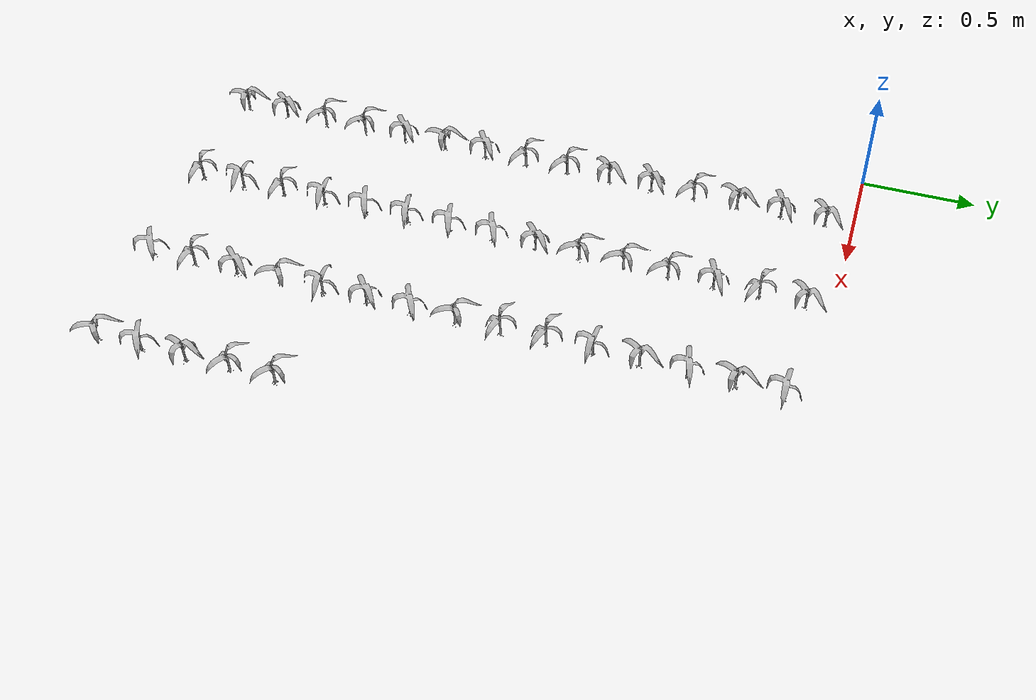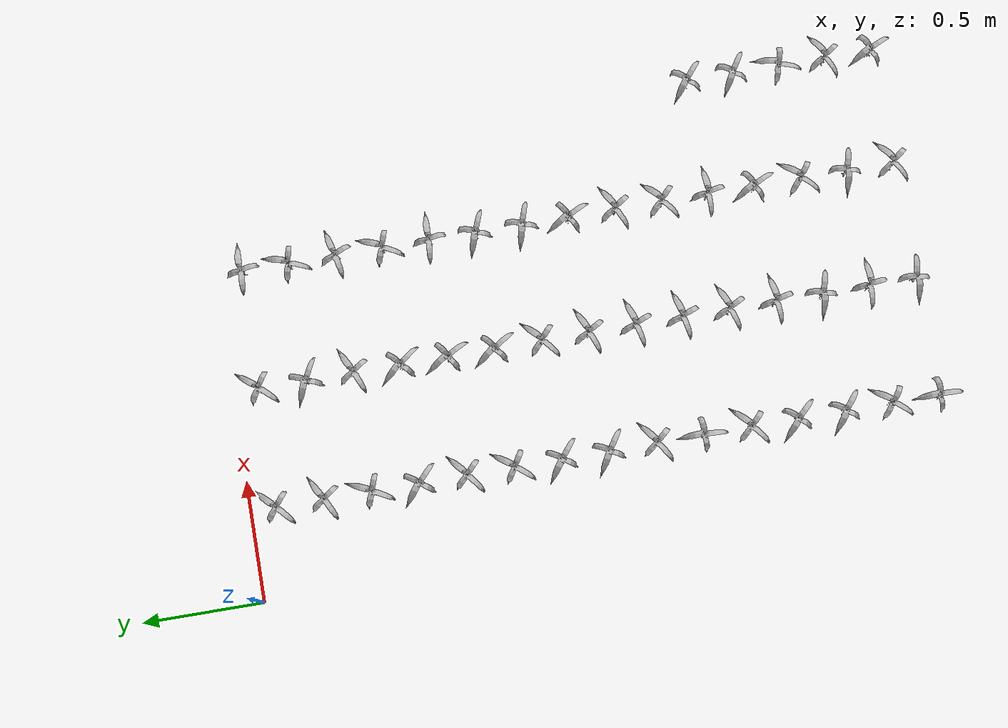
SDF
<sdf version="1.7">
 <world name="default">
  <model name="maize_0.36262630970692733_-2.8499999999999996">
   <static>1</static>
   <link name="link">
    <inertial>
     <mass>0.2</mass>
     <inertia>
      <ixx>0.166667</ixx>
      <ixy>0</ixy>
      <ixz>0</ixz>
      <iyy>0.166667</iyy>
      <iyz>0</iyz>
      <izz>0.166667</izz>
     </inertia>
    </inertial>
    <collision name="collision">
     <geometry><mesh><uri>model://corn_3/meshes/corn.dae</uri><scale>0.25 0.25 0.25</scale></mesh></geometry>
     <surface>
      <friction><ode><mu>0</mu><mu2>0</mu2></ode></friction>
      <contact><ode><kp>0</kp><kd>0</kd><max_vel>0</max_vel><min_depth>0.002</min_depth></ode></contact>
     </surface>
    </collision>
    <visual name="visual">
     <geometry><mesh><uri>model://corn_3/meshes/corn.dae</uri><scale>0.25 0.25 0.25</scale></mesh></geometry>
    </visual>
    <velocity_decay><linear>0</linear><angular>0</angular></velocity_decay>
   </link>
   <pose>0.362626 -2.85 0.05 0 -0 1.63997</pose>
  </model>
  <model name="maize_0.36262630970692733_-2.655">
   <static>1</static>
   <link name="link">
    <inertial>
     <mass>0.2</mass>
     <inertia>
      <ixx>0.166667</ixx>
      <ixy>0</ixy>
      <ixz>0</ixz>
      <iyy>0.166667</iyy>
      <iyz>0</iyz>
      <izz>0.166667</izz>
     </inertia>
    </inertial>
    <collision name="collision">
     <geometry><mesh><uri>model://corn_3/meshes/corn.dae</uri><scale>0.25 0.25 0.25</scale></mesh></geometry>
     <surface>
      <friction><ode><mu>0</mu><mu2>0</mu2></ode></friction>
      <contact><ode><kp>0</kp><kd>0</kd><max_vel>0</max_vel><min_depth>0.002</min_depth></ode></contact>
     </surface>
    </collision>
    <visual name="visual">
     <geometry><mesh><uri>model://corn_3/meshes/corn.dae</uri><scale>0.25 0.25 0.25</scale></mesh></geometry>
    </visual>
    <velocity_decay><linear>0</linear><angular>0</angular></velocity_decay>
   </link>
   <pose>0.362626 -2.655 0.05 0 -0 0.957036</pose>
  </model>
  <model name="maize_0.36262630970692733_-2.46">
   <static>1</static>
   <link name="link">
    <inertial>
     <mass>0.2</mass>
     <inertia>
      <ixx>0.166667</ixx>
      <ixy>0</ixy>
      <ixz>0</ixz>
      <iyy>0.166667</iyy>
      <iyz>0</iyz>
      <izz>0.166667</izz>
     </inertia>
    </inertial>
    <collision name="collision">
     <geometry><mesh><uri>model://corn_3/meshes/corn.dae</uri><scale>0.25 0.25 0.25</scale></mesh></geometry>
     <surface>
      <friction><ode><mu>0</mu><mu2>0</mu2></ode></friction>
      <contact><ode><kp>0</kp><kd>0</kd><max_vel>0</max_vel><min_depth>0.002</min_depth></ode></contact>
     </surface>
    </collision>
    <visual name="visual">
     <geometry><mesh><uri>model://corn_3/meshes/corn.dae</uri><scale>0.25 0.25 0.25</scale></mesh></geometry>
    </visual>
    <velocity_decay><linear>0</linear><angular>0</angular></velocity_decay>
   </link>
   <pose>0.362626 -2.46 0.05 0 -0 2.56929</pose>
  </model>
  <model name="maize_0.36262630970692733_-2.2649999999999997">
   <static>1</static>
   <link name="link">
    <inertial>
     <mass>0.2</mass>
     <inertia>
      <ixx>0.166667</ixx>
      <ixy>0</ixy>
      <ixz>0</ixz>
      <iyy>0.166667</iyy>
      <iyz>0</iyz>
      <izz>0.166667</izz>
     </inertia>
    </inertial>
    <collision name="collision">
     <geometry><mesh><uri>model://corn_3/meshes/corn.dae</uri><scale>0.25 0.25 0.25</scale></mesh></geometry>
     <surface>
      <friction><ode><mu>0</mu><mu2>0</mu2></ode></friction>
      <contact><ode><kp>0</kp><kd>0</kd><max_vel>0</max_vel><min_depth>0.002</min_depth></ode></contact>
     </surface>
    </collision>
    <visual name="visual">
     <geometry><mesh><uri>model://corn_3/meshes/corn.dae</uri><scale>0.25 0.25 0.25</scale></mesh></geometry>
    </visual>
    <velocity_decay><linear>0</linear><angular>0</angular></velocity_decay>
   </link>
   <pose>0.362626 -2.265 0.05 0 -0 2.45253</pose>
  </model>
  <model name="maize_0.36262630970692733_-2.07">
   <static>1</static>
   <link name="link">
    <inertial>
     <mass>0.2</mass>
     <inertia>
      <ixx>0.166667</ixx>
      <ixy>0</ixy>
      <ixz>0</ixz>
      <iyy>0.166667</iyy>
      <iyz>0</iyz>
      <izz>0.166667</izz>
     </inertia>
    </inertial>
    <collision name="collision">
     <geometry><mesh><uri>model://corn_3/meshes/corn.dae</uri><scale>0.25 0.25 0.25</scale></mesh></geometry>
     <surface>
      <friction><ode><mu>0</mu><mu2>0</mu2></ode></friction>
      <contact><ode><kp>0</kp><kd>0</kd><max_vel>0</max_vel><min_depth>0.002</min_depth></ode></contact>
     </surface>
    </collision>
    <visual name="visual">
     <geometry><mesh><uri>model://corn_3/meshes/corn.dae</uri><scale>0.25 0.25 0.25</scale></mesh></geometry>
    </visual>
    <velocity_decay><linear>0</linear><angular>0</angular></velocity_decay>
   </link>
   <pose>0.362626 -2.07 0.05 0 -0 0.765132</pose>
  </model>
  <model name="maize_0.36262630970692733_-1.8749999999999996">
   <static>1</static>
   <link name="link">
    <inertial>
     <mass>0.2</mass>
     <inertia>
      <ixx>0.166667</ixx>
      <ixy>0</ixy>
      <ixz>0</ixz>
      <iyy>0.166667</iyy>
      <iyz>0</iyz>
      <izz>0.166667</izz>
     </inertia>
    </inertial>
    <collision name="collision">
     <geometry><mesh><uri>model://corn_3/meshes/corn.dae</uri><scale>0.25 0.25 0.25</scale></mesh></geometry>
     <surface>
      <friction><ode><mu>0</mu><mu2>0</mu2></ode></friction>
      <contact><ode><kp>0</kp><kd>0</kd><max_vel>0</max_vel><min_depth>0.002</min_depth></ode></contact>
     </surface>
    </collision>
    <visual name="visual">
     <geometry><mesh><uri>model://corn_3/meshes/corn.dae</uri><scale>0.25 0.25 0.25</scale></mesh></geometry>
    </visual>
    <velocity_decay><linear>0</linear><angular>0</angular></velocity_decay>
   </link>
   <pose>0.362626 -1.875 0.05 0 -0 1.61392</pose>
  </model>
  <model name="maize_0.36262630970692733_-1.6799999999999997">
   <static>1</static>
   <link name="link">
    <inertial>
     <mass>0.2</mass>
     <inertia>
      <ixx>0.166667</ixx>
      <ixy>0</ixy>
      <ixz>0</ixz>
      <iyy>0.166667</iyy>
      <iyz>0</iyz>
      <izz>0.166667</izz>
     </inertia>
    </inertial>
    <collision name="collision">
     <geometry><mesh><uri>model://corn_3/meshes/corn.dae</uri><scale>0.25 0.25 0.25</scale></mesh></geometry>
     <surface>
      <friction><ode><mu>0</mu><mu2>0</mu2></ode></friction>
      <contact><ode><kp>0</kp><kd>0</kd><max_vel>0</max_vel><min_depth>0.002</min_depth></ode></contact>
     </surface>
    </collision>
    <visual name="visual">
     <geometry><mesh><uri>model://corn_3/meshes/corn.dae</uri><scale>0.25 0.25 0.25</scale></mesh></geometry>
    </visual>
    <velocity_decay><linear>0</linear><angular>0</angular></velocity_decay>
   </link>
   <pose>0.362626 -1.68 0.05 0 -0 0.6613</pose>
  </model>
  <model name="maize_0.36262630970692733_-1.4849999999999999">
   <static>1</static>
   <link name="link">
    <inertial>
     <mass>0.2</mass>
     <inertia>
      <ixx>0.166667</ixx>
      <ixy>0</ixy>
      <ixz>0</ixz>
      <iyy>0.166667</iyy>
      <iyz>0</iyz>
      <izz>0.166667</izz>
     </inertia>
    </inertial>
    <collision name="collision">
     <geometry><mesh><uri>model://corn_3/meshes/corn.dae</uri><scale>0.25 0.25 0.25</scale></mesh></geometry>
     <surface>
      <friction><ode><mu>0</mu><mu2>0</mu2></ode></friction>
      <contact><ode><kp>0</kp><kd>0</kd><max_vel>0</max_vel><min_depth>0.002</min_depth></ode></contact>
     </surface>
    </collision>
    <visual name="visual">
     <geometry><mesh><uri>model://corn_3/meshes/corn.dae</uri><scale>0.25 0.25 0.25</scale></mesh></geometry>
    </visual>
    <velocity_decay><linear>0</linear><angular>0</angular></velocity_decay>
   </link>
   <pose>0.362626 -1.485 0.05 0 -0 2.6544</pose>
  </model>
  <model name="maize_0.36262630970692733_-1.2899999999999996">
   <static>1</static>
   <link name="link">
    <inertial>
     <mass>0.2</mass>
     <inertia>
      <ixx>0.166667</ixx>
      <ixy>0</ixy>
      <ixz>0</ixz>
      <iyy>0.166667</iyy>
      <iyz>0</iyz>
      <izz>0.166667</izz>
     </inertia>
    </inertial>
    <collision name="collision">
     <geometry><mesh><uri>model://corn_3/meshes/corn.dae</uri><scale>0.25 0.25 0.25</scale></mesh></geometry>
     <surface>
      <friction><ode><mu>0</mu><mu2>0</mu2></ode></friction>
      <contact><ode><kp>0</kp><kd>0</kd><max_vel>0</max_vel><min_depth>0.002</min_depth></ode></contact>
     </surface>
    </collision>
    <visual name="visual">
     <geometry><mesh><uri>model://corn_3/meshes/corn.dae</uri><scale>0.25 0.25 0.25</scale></mesh></geometry>
    </visual>
    <velocity_decay><linear>0</linear><angular>0</angular></velocity_decay>
   </link>
   <pose>0.362626 -1.29 0.05 0 -0 2.56945</pose>
  </model>
  <model name="maize_0.36262630970692733_-1.0949999999999998">
   <static>1</static>
   <link name="link">
    <inertial>
     <mass>0.2</mass>
     <inertia>
      <ixx>0.166667</ixx>
      <ixy>0</ixy>
      <ixz>0</ixz>
      <iyy>0.166667</iyy>
      <iyz>0</iyz>
      <izz>0.166667</izz>
     </inertia>
    </inertial>
    <collision name="collision">
     <geometry><mesh><uri>model://corn_3/meshes/corn.dae</uri><scale>0.25 0.25 0.25</scale></mesh></geometry>
     <surface>
      <friction><ode><mu>0</mu><mu2>0</mu2></ode></friction>
      <contact><ode><kp>0</kp><kd>0</kd><max_vel>0</max_vel><min_depth>0.002</min_depth></ode></contact>
     </surface>
    </collision>
    <visual name="visual">
     <geometry><mesh><uri>model://corn_3/meshes/corn.dae</uri><scale>0.25 0.25 0.25</scale></mesh></geometry>
    </visual>
    <velocity_decay><linear>0</linear><angular>0</angular></velocity_decay>
   </link>
   <pose>0.362626 -1.095 0.05 0 -0 0.975413</pose>
  </model>
  <model name="maize_0.36262630970692733_-0.8999999999999995">
   <static>1</static>
   <link name="link">
    <inertial>
     <mass>0.2</mass>
     <inertia>
      <ixx>0.166667</ixx>
      <ixy>0</ixy>
      <ixz>0</ixz>
      <iyy>0.166667</iyy>
      <iyz>0</iyz>
      <izz>0.166667</izz>
     </inertia>
    </inertial>
    <collision name="collision">
     <geometry><mesh><uri>model://corn_3/meshes/corn.dae</uri><scale>0.25 0.25 0.25</scale></mesh></geometry>
     <surface>
      <friction><ode><mu>0</mu><mu2>0</mu2></ode></friction>
      <contact><ode><kp>0</kp><kd>0</kd><max_vel>0</max_vel><min_depth>0.002</min_depth></ode></contact>
     </surface>
    </collision>
    <visual name="visual">
     <geometry><mesh><uri>model://corn_3/meshes/corn.dae</uri><scale>0.25 0.25 0.25</scale></mesh></geometry>
    </visual>
    <velocity_decay><linear>0</linear><angular>0</angular></velocity_decay>
   </link>
   <pose>0.362626 -0.9 0.05 0 -0 0.733464</pose>
  </model>
  <model name="maize_0.36262630970692733_-0.7050000000000001">
   <static>1</static>
   <link name="link">
    <inertial>
     <mass>0.2</mass>
     <inertia>
      <ixx>0.166667</ixx>
      <ixy>0</ixy>
      <ixz>0</ixz>
      <iyy>0.166667</iyy>
      <iyz>0</iyz>
      <izz>0.166667</izz>
     </inertia>
    </inertial>
    <collision name="collision">
     <geometry><mesh><uri>model://corn_3/meshes/corn.dae</uri><scale>0.25 0.25 0.25</scale></mesh></geometry>
     <surface>
      <friction><ode><mu>0</mu><mu2>0</mu2></ode></friction>
      <contact><ode><kp>0</kp><kd>0</kd><max_vel>0</max_vel><min_depth>0.002</min_depth></ode></contact>
     </surface>
    </collision>
    <visual name="visual">
     <geometry><mesh><uri>model://corn_3/meshes/corn.dae</uri><scale>0.25 0.25 0.25</scale></mesh></geometry>
    </visual>
    <velocity_decay><linear>0</linear><angular>0</angular></velocity_decay>
   </link>
   <pose>0.362626 -0.705 0.05 0 -0 2.50395</pose>
  </model>
  <model name="maize_0.36262630970692733_-0.5099999999999998">
   <static>1</static>
   <link name="link">
    <inertial>
     <mass>0.2</mass>
     <inertia>
      <ixx>0.166667</ixx>
      <ixy>0</ixy>
      <ixz>0</ixz>
      <iyy>0.166667</iyy>
      <iyz>0</iyz>
      <izz>0.166667</izz>
     </inertia>
    </inertial>
    <collision name="collision">
     <geometry><mesh><uri>model://corn_3/meshes/corn.dae</uri><scale>0.25 0.25 0.25</scale></mesh></geometry>
     <surface>
      <friction><ode><mu>0</mu><mu2>0</mu2></ode></friction>
      <contact><ode><kp>0</kp><kd>0</kd><max_vel>0</max_vel><min_depth>0.002</min_depth></ode></contact>
     </surface>
    </collision>
    <visual name="visual">
     <geometry><mesh><uri>model://corn_3/meshes/corn.dae</uri><scale>0.25 0.25 0.25</scale></mesh></geometry>
    </visual>
    <velocity_decay><linear>0</linear><angular>0</angular></velocity_decay>
   </link>
   <pose>0.362626 -0.51 0.05 0 -0 1.16111</pose>
  </model>
  <model name="maize_0.36262630970692733_-0.3149999999999995">
   <static>1</static>
   <link name="link">
    <inertial>
     <mass>0.2</mass>
     <inertia>
      <ixx>0.166667</ixx>
      <ixy>0</ixy>
      <ixz>0</ixz>
      <iyy>0.166667</iyy>
      <iyz>0</iyz>
      <izz>0.166667</izz>
     </inertia>
    </inertial>
    <collision name="collision">
     <geometry><mesh><uri>model://corn_3/meshes/corn.dae</uri><scale>0.25 0.25 0.25</scale></mesh></geometry>
     <surface>
      <friction><ode><mu>0</mu><mu2>0</mu2></ode></friction>
      <contact><ode><kp>0</kp><kd>0</kd><max_vel>0</max_vel><min_depth>0.002</min_depth></ode></contact>
     </surface>
    </collision>
    <visual name="visual">
     <geometry><mesh><uri>model://corn_3/meshes/corn.dae</uri><scale>0.25 0.25 0.25</scale></mesh></geometry>
    </visual>
    <velocity_decay><linear>0</linear><angular>0</angular></velocity_decay>
   </link>
   <pose>0.362626 -0.315 0.05 0 -0 0.552282</pose>
  </model>
  <model name="maize_0.36262630970692733_-0.1200000000000001">
   <static>1</static>
   <link name="link">
    <inertial>
     <mass>0.2</mass>
     <inertia>
      <ixx>0.166667</ixx>
      <ixy>0</ixy>
      <ixz>0</ixz>
      <iyy>0.166667</iyy>
      <iyz>0</iyz>
      <izz>0.166667</izz>
     </inertia>
    </inertial>
    <collision name="collision">
     <geometry><mesh><uri>model://corn_3/meshes/corn.dae</uri><scale>0.25 0.25 0.25</scale></mesh></geometry>
     <surface>
      <friction><ode><mu>0</mu><mu2>0</mu2></ode></friction>
      <contact><ode><kp>0</kp><kd>0</kd><max_vel>0</max_vel><min_depth>0.002</min_depth></ode></contact>
     </surface>
    </collision>
    <visual name="visual">
     <geometry><mesh><uri>model://corn_3/meshes/corn.dae</uri><scale>0.25 0.25 0.25</scale></mesh></geometry>
    </visual>
    <velocity_decay><linear>0</linear><angular>0</angular></velocity_decay>
   </link>
   <pose>0.362626 -0.12 0.05 0 -0 0.819736</pose>
  </model>
  <model name="maize_0.8547947739721122_-2.8499999999999996">
   <static>1</static>
   <link name="link">
    <inertial>
     <mass>0.2</mass>
     <inertia>
      <ixx>0.166667</ixx>
      <ixy>0</ixy>
      <ixz>0</ixz>
      <iyy>0.166667</iyy>
      <iyz>0</iyz>
      <izz>0.166667</izz>
     </inertia>
    </inertial>
    <collision name="collision">
     <geometry><mesh><uri>model://corn_3/meshes/corn.dae</uri><scale>0.25 0.25 0.25</scale></mesh></geometry>
     <surface>
      <friction><ode><mu>0</mu><mu2>0</mu2></ode></friction>
      <contact><ode><kp>0</kp><kd>0</kd><max_vel>0</max_vel><min_depth>0.002</min_depth></ode></contact>
     </surface>
    </collision>
    <visual name="visual">
     <geometry><mesh><uri>model://corn_3/meshes/corn.dae</uri><scale>0.25 0.25 0.25</scale></mesh></geometry>
    </visual>
    <velocity_decay><linear>0</linear><angular>0</angular></velocity_decay>
   </link>
   <pose>0.854795 -2.85 0.05 0 -0 3.07498</pose>
  </model>
  <model name="maize_0.8547947739721122_-2.655">
   <static>1</static>
   <link name="link">
    <inertial>
     <mass>0.2</mass>
     <inertia>
      <ixx>0.166667</ixx>
      <ixy>0</ixy>
      <ixz>0</ixz>
      <iyy>0.166667</iyy>
      <iyz>0</iyz>
      <izz>0.166667</izz>
     </inertia>
    </inertial>
    <collision name="collision">
     <geometry><mesh><uri>model://corn_3/meshes/corn.dae</uri><scale>0.25 0.25 0.25</scale></mesh></geometry>
     <surface>
      <friction><ode><mu>0</mu><mu2>0</mu2></ode></friction>
      <contact><ode><kp>0</kp><kd>0</kd><max_vel>0</max_vel><min_depth>0.002</min_depth></ode></contact>
     </surface>
    </collision>
    <visual name="visual">
     <geometry><mesh><uri>model://corn_3/meshes/corn.dae</uri><scale>0.25 0.25 0.25</scale></mesh></geometry>
    </visual>
    <velocity_decay><linear>0</linear><angular>0</angular></velocity_decay>
   </link>
   <pose>0.854795 -2.655 0.05 0 -0 0.038304</pose>
  </model>
  <model name="maize_0.8547947739721122_-2.46">
   <static>1</static>
   <link name="link">
    <inertial>
     <mass>0.2</mass>
     <inertia>
      <ixx>0.166667</ixx>
      <ixy>0</ixy>
      <ixz>0</ixz>
      <iyy>0.166667</iyy>
      <iyz>0</iyz>
      <izz>0.166667</izz>
     </inertia>
    </inertial>
    <collision name="collision">
     <geometry><mesh><uri>model://corn_3/meshes/corn.dae</uri><scale>0.25 0.25 0.25</scale></mesh></geometry>
     <surface>
      <friction><ode><mu>0</mu><mu2>0</mu2></ode></friction>
      <contact><ode><kp>0</kp><kd>0</kd><max_vel>0</max_vel><min_depth>0.002</min_depth></ode></contact>
     </surface>
    </collision>
    <visual name="visual">
     <geometry><mesh><uri>model://corn_3/meshes/corn.dae</uri><scale>0.25 0.25 0.25</scale></mesh></geometry>
    </visual>
    <velocity_decay><linear>0</linear><angular>0</angular></velocity_decay>
   </link>
   <pose>0.854795 -2.46 0.05 0 -0 2.97544</pose>
  </model>
  <model name="maize_0.8547947739721122_-2.2649999999999997">
   <static>1</static>
   <link name="link">
    <inertial>
     <mass>0.2</mass>
     <inertia>
      <ixx>0.166667</ixx>
      <ixy>0</ixy>
      <ixz>0</ixz>
      <iyy>0.166667</iyy>
      <iyz>0</iyz>
      <izz>0.166667</izz>
     </inertia>
    </inertial>
    <collision name="collision">
     <geometry><mesh><uri>model://corn_3/meshes/corn.dae</uri><scale>0.25 0.25 0.25</scale></mesh></geometry>
     <surface>
      <friction><ode><mu>0</mu><mu2>0</mu2></ode></friction>
      <contact><ode><kp>0</kp><kd>0</kd><max_vel>0</max_vel><min_depth>0.002</min_depth></ode></contact>
     </surface>
    </collision>
    <visual name="visual">
     <geometry><mesh><uri>model://corn_3/meshes/corn.dae</uri><scale>0.25 0.25 0.25</scale></mesh></geometry>
    </visual>
    <velocity_decay><linear>0</linear><angular>0</angular></velocity_decay>
   </link>
   <pose>0.854795 -2.265 0.05 0 -0 0.165056</pose>
  </model>
  <model name="maize_0.8547947739721122_-2.07">
   <static>1</static>
   <link name="link">
    <inertial>
     <mass>0.2</mass>
     <inertia>
      <ixx>0.166667</ixx>
      <ixy>0</ixy>
      <ixz>0</ixz>
      <iyy>0.166667</iyy>
      <iyz>0</iyz>
      <izz>0.166667</izz>
     </inertia>
    </inertial>
    <collision name="collision">
     <geometry><mesh><uri>model://corn_3/meshes/corn.dae</uri><scale>0.25 0.25 0.25</scale></mesh></geometry>
     <surface>
      <friction><ode><mu>0</mu><mu2>0</mu2></ode></friction>
      <contact><ode><kp>0</kp><kd>0</kd><max_vel>0</max_vel><min_depth>0.002</min_depth></ode></contact>
     </surface>
    </collision>
    <visual name="visual">
     <geometry><mesh><uri>model://corn_3/meshes/corn.dae</uri><scale>0.25 0.25 0.25</scale></mesh></geometry>
    </visual>
    <velocity_decay><linear>0</linear><angular>0</angular></velocity_decay>
   </link>
   <pose>0.854795 -2.07 0.05 0 -0 0.405092</pose>
  </model>
  <model name="maize_0.8547947739721122_-1.8749999999999996">
   <static>1</static>
   <link name="link">
    <inertial>
     <mass>0.2</mass>
     <inertia>
      <ixx>0.166667</ixx>
      <ixy>0</ixy>
      <ixz>0</ixz>
      <iyy>0.166667</iyy>
      <iyz>0</iyz>
      <izz>0.166667</izz>
     </inertia>
    </inertial>
    <collision name="collision">
     <geometry><mesh><uri>model://corn_3/meshes/corn.dae</uri><scale>0.25 0.25 0.25</scale></mesh></geometry>
     <surface>
      <friction><ode><mu>0</mu><mu2>0</mu2></ode></friction>
      <contact><ode><kp>0</kp><kd>0</kd><max_vel>0</max_vel><min_depth>0.002</min_depth></ode></contact>
     </surface>
    </collision>
    <visual name="visual">
     <geometry><mesh><uri>model://corn_3/meshes/corn.dae</uri><scale>0.25 0.25 0.25</scale></mesh></geometry>
    </visual>
    <velocity_decay><linear>0</linear><angular>0</angular></velocity_decay>
   </link>
   <pose>0.854795 -1.875 0.05 0 -0 0.283132</pose>
  </model>
  <model name="maize_0.8547947739721122_-1.6799999999999997">
   <static>1</static>
   <link name="link">
    <inertial>
     <mass>0.2</mass>
     <inertia>
      <ixx>0.166667</ixx>
      <ixy>0</ixy>
      <ixz>0</ixz>
      <iyy>0.166667</iyy>
      <iyz>0</iyz>
      <izz>0.166667</izz>
     </inertia>
    </inertial>
    <collision name="collision">
     <geometry><mesh><uri>model://corn_3/meshes/corn.dae</uri><scale>0.25 0.25 0.25</scale></mesh></geometry>
     <surface>
      <friction><ode><mu>0</mu><mu2>0</mu2></ode></friction>
      <contact><ode><kp>0</kp><kd>0</kd><max_vel>0</max_vel><min_depth>0.002</min_depth></ode></contact>
     </surface>
    </collision>
    <visual name="visual">
     <geometry><mesh><uri>model://corn_3/meshes/corn.dae</uri><scale>0.25 0.25 0.25</scale></mesh></geometry>
    </visual>
    <velocity_decay><linear>0</linear><angular>0</angular></velocity_decay>
   </link>
   <pose>0.854795 -1.68 0.05 0 -0 0.321139</pose>
  </model>
  <model name="maize_0.8547947739721122_-1.4849999999999999">
   <static>1</static>
   <link name="link">
    <inertial>
     <mass>0.2</mass>
     <inertia>
      <ixx>0.166667</ixx>
      <ixy>0</ixy>
      <ixz>0</ixz>
      <iyy>0.166667</iyy>
      <iyz>0</iyz>
      <izz>0.166667</izz>
     </inertia>
    </inertial>
    <collision name="collision">
     <geometry><mesh><uri>model://corn_3/meshes/corn.dae</uri><scale>0.25 0.25 0.25</scale></mesh></geometry>
     <surface>
      <friction><ode><mu>0</mu><mu2>0</mu2></ode></friction>
      <contact><ode><kp>0</kp><kd>0</kd><max_vel>0</max_vel><min_depth>0.002</min_depth></ode></contact>
     </surface>
    </collision>
    <visual name="visual">
     <geometry><mesh><uri>model://corn_3/meshes/corn.dae</uri><scale>0.25 0.25 0.25</scale></mesh></geometry>
    </visual>
    <velocity_decay><linear>0</linear><angular>0</angular></velocity_decay>
   </link>
   <pose>0.854795 -1.485 0.05 0 -0 0.455504</pose>
  </model>
  <model name="maize_0.8547947739721122_-1.2899999999999996">
   <static>1</static>
   <link name="link">
    <inertial>
     <mass>0.2</mass>
     <inertia>
      <ixx>0.166667</ixx>
      <ixy>0</ixy>
      <ixz>0</ixz>
      <iyy>0.166667</iyy>
      <iyz>0</iyz>
      <izz>0.166667</izz>
     </inertia>
    </inertial>
    <collision name="collision">
     <geometry><mesh><uri>model://corn_3/meshes/corn.dae</uri><scale>0.25 0.25 0.25</scale></mesh></geometry>
     <surface>
      <friction><ode><mu>0</mu><mu2>0</mu2></ode></friction>
      <contact><ode><kp>0</kp><kd>0</kd><max_vel>0</max_vel><min_depth>0.002</min_depth></ode></contact>
     </surface>
    </collision>
    <visual name="visual">
     <geometry><mesh><uri>model://corn_3/meshes/corn.dae</uri><scale>0.25 0.25 0.25</scale></mesh></geometry>
    </visual>
    <velocity_decay><linear>0</linear><angular>0</angular></velocity_decay>
   </link>
   <pose>0.854795 -1.29 0.05 0 -0 0.790538</pose>
  </model>
  <model name="maize_0.8547947739721122_-1.0949999999999998">
   <static>1</static>
   <link name="link">
    <inertial>
     <mass>0.2</mass>
     <inertia>
      <ixx>0.166667</ixx>
      <ixy>0</ixy>
      <ixz>0</ixz>
      <iyy>0.166667</iyy>
      <iyz>0</iyz>
      <izz>0.166667</izz>
     </inertia>
    </inertial>
    <collision name="collision">
     <geometry><mesh><uri>model://corn_3/meshes/corn.dae</uri><scale>0.25 0.25 0.25</scale></mesh></geometry>
     <surface>
      <friction><ode><mu>0</mu><mu2>0</mu2></ode></friction>
      <contact><ode><kp>0</kp><kd>0</kd><max_vel>0</max_vel><min_depth>0.002</min_depth></ode></contact>
     </surface>
    </collision>
    <visual name="visual">
     <geometry><mesh><uri>model://corn_3/meshes/corn.dae</uri><scale>0.25 0.25 0.25</scale></mesh></geometry>
    </visual>
    <velocity_decay><linear>0</linear><angular>0</angular></velocity_decay>
   </link>
   <pose>0.854795 -1.095 0.05 0 -0 2.23783</pose>
  </model>
  <model name="maize_0.8547947739721122_-0.8999999999999995">
   <static>1</static>
   <link name="link">
    <inertial>
     <mass>0.2</mass>
     <inertia>
      <ixx>0.166667</ixx>
      <ixy>0</ixy>
      <ixz>0</ixz>
      <iyy>0.166667</iyy>
      <iyz>0</iyz>
      <izz>0.166667</izz>
     </inertia>
    </inertial>
    <collision name="collision">
     <geometry><mesh><uri>model://corn_3/meshes/corn.dae</uri><scale>0.25 0.25 0.25</scale></mesh></geometry>
     <surface>
      <friction><ode><mu>0</mu><mu2>0</mu2></ode></friction>
      <contact><ode><kp>0</kp><kd>0</kd><max_vel>0</max_vel><min_depth>0.002</min_depth></ode></contact>
     </surface>
    </collision>
    <visual name="visual">
     <geometry><mesh><uri>model://corn_3/meshes/corn.dae</uri><scale>0.25 0.25 0.25</scale></mesh></geometry>
    </visual>
    <velocity_decay><linear>0</linear><angular>0</angular></velocity_decay>
   </link>
   <pose>0.854795 -0.9 0.05 0 -0 2.15259</pose>
  </model>
  <model name="maize_0.8547947739721122_-0.7050000000000001">
   <static>1</static>
   <link name="link">
    <inertial>
     <mass>0.2</mass>
     <inertia>
      <ixx>0.166667</ixx>
      <ixy>0</ixy>
      <ixz>0</ixz>
      <iyy>0.166667</iyy>
      <iyz>0</iyz>
      <izz>0.166667</izz>
     </inertia>
    </inertial>
    <collision name="collision">
     <geometry><mesh><uri>model://corn_3/meshes/corn.dae</uri><scale>0.25 0.25 0.25</scale></mesh></geometry>
     <surface>
      <friction><ode><mu>0</mu><mu2>0</mu2></ode></friction>
      <contact><ode><kp>0</kp><kd>0</kd><max_vel>0</max_vel><min_depth>0.002</min_depth></ode></contact>
     </surface>
    </collision>
    <visual name="visual">
     <geometry><mesh><uri>model://corn_3/meshes/corn.dae</uri><scale>0.25 0.25 0.25</scale></mesh></geometry>
    </visual>
    <velocity_decay><linear>0</linear><angular>0</angular></velocity_decay>
   </link>
   <pose>0.854795 -0.705 0.05 0 -0 2.32455</pose>
  </model>
  <model name="maize_0.8547947739721122_-0.5099999999999998">
   <static>1</static>
   <link name="link">
    <inertial>
     <mass>0.2</mass>
     <inertia>
      <ixx>0.166667</ixx>
      <ixy>0</ixy>
      <ixz>0</ixz>
      <iyy>0.166667</iyy>
      <iyz>0</iyz>
      <izz>0.166667</izz>
     </inertia>
    </inertial>
    <collision name="collision">
     <geometry><mesh><uri>model://corn_3/meshes/corn.dae</uri><scale>0.25 0.25 0.25</scale></mesh></geometry>
     <surface>
      <friction><ode><mu>0</mu><mu2>0</mu2></ode></friction>
      <contact><ode><kp>0</kp><kd>0</kd><max_vel>0</max_vel><min_depth>0.002</min_depth></ode></contact>
     </surface>
    </collision>
    <visual name="visual">
     <geometry><mesh><uri>model://corn_3/meshes/corn.dae</uri><scale>0.25 0.25 0.25</scale></mesh></geometry>
    </visual>
    <velocity_decay><linear>0</linear><angular>0</angular></velocity_decay>
   </link>
   <pose>0.854795 -0.51 0.05 0 -0 0.500217</pose>
  </model>
  <model name="maize_0.8547947739721122_-0.3149999999999995">
   <static>1</static>
   <link name="link">
    <inertial>
     <mass>0.2</mass>
     <inertia>
      <ixx>0.166667</ixx>
      <ixy>0</ixy>
      <ixz>0</ixz>
      <iyy>0.166667</iyy>
      <iyz>0</iyz>
      <izz>0.166667</izz>
     </inertia>
    </inertial>
    <collision name="collision">
     <geometry><mesh><uri>model://corn_3/meshes/corn.dae</uri><scale>0.25 0.25 0.25</scale></mesh></geometry>
     <surface>
      <friction><ode><mu>0</mu><mu2>0</mu2></ode></friction>
      <contact><ode><kp>0</kp><kd>0</kd><max_vel>0</max_vel><min_depth>0.002</min_depth></ode></contact>
     </surface>
    </collision>
    <visual name="visual">
     <geometry><mesh><uri>model://corn_3/meshes/corn.dae</uri><scale>0.25 0.25 0.25</scale></mesh></geometry>
    </visual>
    <velocity_decay><linear>0</linear><angular>0</angular></velocity_decay>
   </link>
   <pose>0.854795 -0.315 0.05 0 -0 2.78046</pose>
  </model>
  <model name="maize_0.8547947739721122_-0.1200000000000001">
   <static>1</static>
   <link name="link">
    <inertial>
     <mass>0.2</mass>
     <inertia>
      <ixx>0.166667</ixx>
      <ixy>0</ixy>
      <ixz>0</ixz>
      <iyy>0.166667</iyy>
      <iyz>0</iyz>
      <izz>0.166667</izz>
     </inertia>
    </inertial>
    <collision name="collision">
     <geometry><mesh><uri>model://corn_3/meshes/corn.dae</uri><scale>0.25 0.25 0.25</scale></mesh></geometry>
     <surface>
      <friction><ode><mu>0</mu><mu2>0</mu2></ode></friction>
      <contact><ode><kp>0</kp><kd>0</kd><max_vel>0</max_vel><min_depth>0.002</min_depth></ode></contact>
     </surface>
    </collision>
    <visual name="visual">
     <geometry><mesh><uri>model://corn_3/meshes/corn.dae</uri><scale>0.25 0.25 0.25</scale></mesh></geometry>
    </visual>
    <velocity_decay><linear>0</linear><angular>0</angular></velocity_decay>
   </link>
   <pose>0.854795 -0.12 0.05 0 -0 0.921341</pose>
  </model>
  <model name="maize_1.346222194063599_-2.8499999999999996">
   <static>1</static>
   <link name="link">
    <inertial>
     <mass>0.2</mass>
     <inertia>
      <ixx>0.166667</ixx>
      <ixy>0</ixy>
      <ixz>0</ixz>
      <iyy>0.166667</iyy>
      <iyz>0</iyz>
      <izz>0.166667</izz>
     </inertia>
    </inertial>
    <collision name="collision">
     <geometry><mesh><uri>model://corn_3/meshes/corn.dae</uri><scale>0.25 0.25 0.25</scale></mesh></geometry>
     <surface>
      <friction><ode><mu>0</mu><mu2>0</mu2></ode></friction>
      <contact><ode><kp>0</kp><kd>0</kd><max_vel>0</max_vel><min_depth>0.002</min_depth></ode></contact>
     </surface>
    </collision>
    <visual name="visual">
     <geometry><mesh><uri>model://corn_3/meshes/corn.dae</uri><scale>0.25 0.25 0.25</scale></mesh></geometry>
    </visual>
    <velocity_decay><linear>0</linear><angular>0</angular></velocity_decay>
   </link>
   <pose>1.34622 -2.85 0.05 0 -0 0.611512</pose>
  </model>
  <model name="maize_1.346222194063599_-2.655">
   <static>1</static>
   <link name="link">
    <inertial>
     <mass>0.2</mass>
     <inertia>
      <ixx>0.166667</ixx>
      <ixy>0</ixy>
      <ixz>0</ixz>
      <iyy>0.166667</iyy>
      <iyz>0</iyz>
      <izz>0.166667</izz>
     </inertia>
    </inertial>
    <collision name="collision">
     <geometry><mesh><uri>model://corn_3/meshes/corn.dae</uri><scale>0.25 0.25 0.25</scale></mesh></geometry>
     <surface>
      <friction><ode><mu>0</mu><mu2>0</mu2></ode></friction>
      <contact><ode><kp>0</kp><kd>0</kd><max_vel>0</max_vel><min_depth>0.002</min_depth></ode></contact>
     </surface>
    </collision>
    <visual name="visual">
     <geometry><mesh><uri>model://corn_3/meshes/corn.dae</uri><scale>0.25 0.25 0.25</scale></mesh></geometry>
    </visual>
    <velocity_decay><linear>0</linear><angular>0</angular></velocity_decay>
   </link>
   <pose>1.34622 -2.655 0.05 0 -0 2.99276</pose>
  </model>
  <model name="maize_1.346222194063599_-2.46">
   <static>1</static>
   <link name="link">
    <inertial>
     <mass>0.2</mass>
     <inertia>
      <ixx>0.166667</ixx>
      <ixy>0</ixy>
      <ixz>0</ixz>
      <iyy>0.166667</iyy>
      <iyz>0</iyz>
      <izz>0.166667</izz>
     </inertia>
    </inertial>
    <collision name="collision">
     <geometry><mesh><uri>model://corn_3/meshes/corn.dae</uri><scale>0.25 0.25 0.25</scale></mesh></geometry>
     <surface>
      <friction><ode><mu>0</mu><mu2>0</mu2></ode></friction>
      <contact><ode><kp>0</kp><kd>0</kd><max_vel>0</max_vel><min_depth>0.002</min_depth></ode></contact>
     </surface>
    </collision>
    <visual name="visual">
     <geometry><mesh><uri>model://corn_3/meshes/corn.dae</uri><scale>0.25 0.25 0.25</scale></mesh></geometry>
    </visual>
    <velocity_decay><linear>0</linear><angular>0</angular></velocity_decay>
   </link>
   <pose>1.34622 -2.46 0.05 0 -0 0.88836</pose>
  </model>
  <model name="maize_1.346222194063599_-2.2649999999999997">
   <static>1</static>
   <link name="link">
    <inertial>
     <mass>0.2</mass>
     <inertia>
      <ixx>0.166667</ixx>
      <ixy>0</ixy>
      <ixz>0</ixz>
      <iyy>0.166667</iyy>
      <iyz>0</iyz>
      <izz>0.166667</izz>
     </inertia>
    </inertial>
    <collision name="collision">
     <geometry><mesh><uri>model://corn_3/meshes/corn.dae</uri><scale>0.25 0.25 0.25</scale></mesh></geometry>
     <surface>
      <friction><ode><mu>0</mu><mu2>0</mu2></ode></friction>
      <contact><ode><kp>0</kp><kd>0</kd><max_vel>0</max_vel><min_depth>0.002</min_depth></ode></contact>
     </surface>
    </collision>
    <visual name="visual">
     <geometry><mesh><uri>model://corn_3/meshes/corn.dae</uri><scale>0.25 0.25 0.25</scale></mesh></geometry>
    </visual>
    <velocity_decay><linear>0</linear><angular>0</angular></velocity_decay>
   </link>
   <pose>1.34622 -2.265 0.05 0 -0 2.11704</pose>
  </model>
  <model name="maize_1.346222194063599_-2.07">
   <static>1</static>
   <link name="link">
    <inertial>
     <mass>0.2</mass>
     <inertia>
      <ixx>0.166667</ixx>
      <ixy>0</ixy>
      <ixz>0</ixz>
      <iyy>0.166667</iyy>
      <iyz>0</iyz>
      <izz>0.166667</izz>
     </inertia>
    </inertial>
    <collision name="collision">
     <geometry><mesh><uri>model://corn_3/meshes/corn.dae</uri><scale>0.25 0.25 0.25</scale></mesh></geometry>
     <surface>
      <friction><ode><mu>0</mu><mu2>0</mu2></ode></friction>
      <contact><ode><kp>0</kp><kd>0</kd><max_vel>0</max_vel><min_depth>0.002</min_depth></ode></contact>
     </surface>
    </collision>
    <visual name="visual">
     <geometry><mesh><uri>model://corn_3/meshes/corn.dae</uri><scale>0.25 0.25 0.25</scale></mesh></geometry>
    </visual>
    <velocity_decay><linear>0</linear><angular>0</angular></velocity_decay>
   </link>
   <pose>1.34622 -2.07 0.05 0 -0 0.095744</pose>
  </model>
  <model name="maize_1.346222194063599_-1.8749999999999996">
   <static>1</static>
   <link name="link">
    <inertial>
     <mass>0.2</mass>
     <inertia>
      <ixx>0.166667</ixx>
      <ixy>0</ixy>
      <ixz>0</ixz>
      <iyy>0.166667</iyy>
      <iyz>0</iyz>
      <izz>0.166667</izz>
     </inertia>
    </inertial>
    <collision name="collision">
     <geometry><mesh><uri>model://corn_3/meshes/corn.dae</uri><scale>0.25 0.25 0.25</scale></mesh></geometry>
     <surface>
      <friction><ode><mu>0</mu><mu2>0</mu2></ode></friction>
      <contact><ode><kp>0</kp><kd>0</kd><max_vel>0</max_vel><min_depth>0.002</min_depth></ode></contact>
     </surface>
    </collision>
    <visual name="visual">
     <geometry><mesh><uri>model://corn_3/meshes/corn.dae</uri><scale>0.25 0.25 0.25</scale></mesh></geometry>
    </visual>
    <velocity_decay><linear>0</linear><angular>0</angular></velocity_decay>
   </link>
   <pose>1.34622 -1.875 0.05 0 -0 0.76265</pose>
  </model>
  <model name="maize_1.346222194063599_-1.6799999999999997">
   <static>1</static>
   <link name="link">
    <inertial>
     <mass>0.2</mass>
     <inertia>
      <ixx>0.166667</ixx>
      <ixy>0</ixy>
      <ixz>0</ixz>
      <iyy>0.166667</iyy>
      <iyz>0</iyz>
      <izz>0.166667</izz>
     </inertia>
    </inertial>
    <collision name="collision">
     <geometry><mesh><uri>model://corn_3/meshes/corn.dae</uri><scale>0.25 0.25 0.25</scale></mesh></geometry>
     <surface>
      <friction><ode><mu>0</mu><mu2>0</mu2></ode></friction>
      <contact><ode><kp>0</kp><kd>0</kd><max_vel>0</max_vel><min_depth>0.002</min_depth></ode></contact>
     </surface>
    </collision>
    <visual name="visual">
     <geometry><mesh><uri>model://corn_3/meshes/corn.dae</uri><scale>0.25 0.25 0.25</scale></mesh></geometry>
    </visual>
    <velocity_decay><linear>0</linear><angular>0</angular></velocity_decay>
   </link>
   <pose>1.34622 -1.68 0.05 0 -0 0.533392</pose>
  </model>
  <model name="maize_1.346222194063599_-1.4849999999999999">
   <static>1</static>
   <link name="link">
    <inertial>
     <mass>0.2</mass>
     <inertia>
      <ixx>0.166667</ixx>
      <ixy>0</ixy>
      <ixz>0</ixz>
      <iyy>0.166667</iyy>
      <iyz>0</iyz>
      <izz>0.166667</izz>
     </inertia>
    </inertial>
    <collision name="collision">
     <geometry><mesh><uri>model://corn_3/meshes/corn.dae</uri><scale>0.25 0.25 0.25</scale></mesh></geometry>
     <surface>
      <friction><ode><mu>0</mu><mu2>0</mu2></ode></friction>
      <contact><ode><kp>0</kp><kd>0</kd><max_vel>0</max_vel><min_depth>0.002</min_depth></ode></contact>
     </surface>
    </collision>
    <visual name="visual">
     <geometry><mesh><uri>model://corn_3/meshes/corn.dae</uri><scale>0.25 0.25 0.25</scale></mesh></geometry>
    </visual>
    <velocity_decay><linear>0</linear><angular>0</angular></velocity_decay>
   </link>
   <pose>1.34622 -1.485 0.05 0 -0 2.11868</pose>
  </model>
  <model name="maize_1.346222194063599_-1.2899999999999996">
   <static>1</static>
   <link name="link">
    <inertial>
     <mass>0.2</mass>
     <inertia>
      <ixx>0.166667</ixx>
      <ixy>0</ixy>
      <ixz>0</ixz>
      <iyy>0.166667</iyy>
      <iyz>0</iyz>
      <izz>0.166667</izz>
     </inertia>
    </inertial>
    <collision name="collision">
     <geometry><mesh><uri>model://corn_3/meshes/corn.dae</uri><scale>0.25 0.25 0.25</scale></mesh></geometry>
     <surface>
      <friction><ode><mu>0</mu><mu2>0</mu2></ode></friction>
      <contact><ode><kp>0</kp><kd>0</kd><max_vel>0</max_vel><min_depth>0.002</min_depth></ode></contact>
     </surface>
    </collision>
    <visual name="visual">
     <geometry><mesh><uri>model://corn_3/meshes/corn.dae</uri><scale>0.25 0.25 0.25</scale></mesh></geometry>
    </visual>
    <velocity_decay><linear>0</linear><angular>0</angular></velocity_decay>
   </link>
   <pose>1.34622 -1.29 0.05 0 -0 2.93209</pose>
  </model>
  <model name="maize_1.346222194063599_-1.0949999999999998">
   <static>1</static>
   <link name="link">
    <inertial>
     <mass>0.2</mass>
     <inertia>
      <ixx>0.166667</ixx>
      <ixy>0</ixy>
      <ixz>0</ixz>
      <iyy>0.166667</iyy>
      <iyz>0</iyz>
      <izz>0.166667</izz>
     </inertia>
    </inertial>
    <collision name="collision">
     <geometry><mesh><uri>model://corn_3/meshes/corn.dae</uri><scale>0.25 0.25 0.25</scale></mesh></geometry>
     <surface>
      <friction><ode><mu>0</mu><mu2>0</mu2></ode></friction>
      <contact><ode><kp>0</kp><kd>0</kd><max_vel>0</max_vel><min_depth>0.002</min_depth></ode></contact>
     </surface>
    </collision>
    <visual name="visual">
     <geometry><mesh><uri>model://corn_3/meshes/corn.dae</uri><scale>0.25 0.25 0.25</scale></mesh></geometry>
    </visual>
    <velocity_decay><linear>0</linear><angular>0</angular></velocity_decay>
   </link>
   <pose>1.34622 -1.095 0.05 0 -0 2.86362</pose>
  </model>
  <model name="maize_1.346222194063599_-0.8999999999999995">
   <static>1</static>
   <link name="link">
    <inertial>
     <mass>0.2</mass>
     <inertia>
      <ixx>0.166667</ixx>
      <ixy>0</ixy>
      <ixz>0</ixz>
      <iyy>0.166667</iyy>
      <iyz>0</iyz>
      <izz>0.166667</izz>
     </inertia>
    </inertial>
    <collision name="collision">
     <geometry><mesh><uri>model://corn_3/meshes/corn.dae</uri><scale>0.25 0.25 0.25</scale></mesh></geometry>
     <surface>
      <friction><ode><mu>0</mu><mu2>0</mu2></ode></friction>
      <contact><ode><kp>0</kp><kd>0</kd><max_vel>0</max_vel><min_depth>0.002</min_depth></ode></contact>
     </surface>
    </collision>
    <visual name="visual">
     <geometry><mesh><uri>model://corn_3/meshes/corn.dae</uri><scale>0.25 0.25 0.25</scale></mesh></geometry>
    </visual>
    <velocity_decay><linear>0</linear><angular>0</angular></velocity_decay>
   </link>
   <pose>1.34622 -0.9 0.05 0 -0 0.016341</pose>
  </model>
  <model name="maize_1.346222194063599_-0.7050000000000001">
   <static>1</static>
   <link name="link">
    <inertial>
     <mass>0.2</mass>
     <inertia>
      <ixx>0.166667</ixx>
      <ixy>0</ixy>
      <ixz>0</ixz>
      <iyy>0.166667</iyy>
      <iyz>0</iyz>
      <izz>0.166667</izz>
     </inertia>
    </inertial>
    <collision name="collision">
     <geometry><mesh><uri>model://corn_3/meshes/corn.dae</uri><scale>0.25 0.25 0.25</scale></mesh></geometry>
     <surface>
      <friction><ode><mu>0</mu><mu2>0</mu2></ode></friction>
      <contact><ode><kp>0</kp><kd>0</kd><max_vel>0</max_vel><min_depth>0.002</min_depth></ode></contact>
     </surface>
    </collision>
    <visual name="visual">
     <geometry><mesh><uri>model://corn_3/meshes/corn.dae</uri><scale>0.25 0.25 0.25</scale></mesh></geometry>
    </visual>
    <velocity_decay><linear>0</linear><angular>0</angular></velocity_decay>
   </link>
   <pose>1.34622 -0.705 0.05 0 -0 1.17335</pose>
  </model>
  <model name="maize_1.346222194063599_-0.5099999999999998">
   <static>1</static>
   <link name="link">
    <inertial>
     <mass>0.2</mass>
     <inertia>
      <ixx>0.166667</ixx>
      <ixy>0</ixy>
      <ixz>0</ixz>
      <iyy>0.166667</iyy>
      <iyz>0</iyz>
      <izz>0.166667</izz>
     </inertia>
    </inertial>
    <collision name="collision">
     <geometry><mesh><uri>model://corn_3/meshes/corn.dae</uri><scale>0.25 0.25 0.25</scale></mesh></geometry>
     <surface>
      <friction><ode><mu>0</mu><mu2>0</mu2></ode></friction>
      <contact><ode><kp>0</kp><kd>0</kd><max_vel>0</max_vel><min_depth>0.002</min_depth></ode></contact>
     </surface>
    </collision>
    <visual name="visual">
     <geometry><mesh><uri>model://corn_3/meshes/corn.dae</uri><scale>0.25 0.25 0.25</scale></mesh></geometry>
    </visual>
    <velocity_decay><linear>0</linear><angular>0</angular></velocity_decay>
   </link>
   <pose>1.34622 -0.51 0.05 0 -0 0.294335</pose>
  </model>
  <model name="maize_1.346222194063599_-0.3149999999999995">
   <static>1</static>
   <link name="link">
    <inertial>
     <mass>0.2</mass>
     <inertia>
      <ixx>0.166667</ixx>
      <ixy>0</ixy>
      <ixz>0</ixz>
      <iyy>0.166667</iyy>
      <iyz>0</iyz>
      <izz>0.166667</izz>
     </inertia>
    </inertial>
    <collision name="collision">
     <geometry><mesh><uri>model://corn_3/meshes/corn.dae</uri><scale>0.25 0.25 0.25</scale></mesh></geometry>
     <surface>
      <friction><ode><mu>0</mu><mu2>0</mu2></ode></friction>
      <contact><ode><kp>0</kp><kd>0</kd><max_vel>0</max_vel><min_depth>0.002</min_depth></ode></contact>
     </surface>
    </collision>
    <visual name="visual">
     <geometry><mesh><uri>model://corn_3/meshes/corn.dae</uri><scale>0.25 0.25 0.25</scale></mesh></geometry>
    </visual>
    <velocity_decay><linear>0</linear><angular>0</angular></velocity_decay>
   </link>
   <pose>1.34622 -0.315 0.05 0 -0 1.27713</pose>
  </model>
  <model name="maize_1.346222194063599_-0.1200000000000001">
   <static>1</static>
   <link name="link">
    <inertial>
     <mass>0.2</mass>
     <inertia>
      <ixx>0.166667</ixx>
      <ixy>0</ixy>
      <ixz>0</ixz>
      <iyy>0.166667</iyy>
      <iyz>0</iyz>
      <izz>0.166667</izz>
     </inertia>
    </inertial>
    <collision name="collision">
     <geometry><mesh><uri>model://corn_3/meshes/corn.dae</uri><scale>0.25 0.25 0.25</scale></mesh></geometry>
     <surface>
      <friction><ode><mu>0</mu><mu2>0</mu2></ode></friction>
      <contact><ode><kp>0</kp><kd>0</kd><max_vel>0</max_vel><min_depth>0.002</min_depth></ode></contact>
     </surface>
    </collision>
    <visual name="visual">
     <geometry><mesh><uri>model://corn_3/meshes/corn.dae</uri><scale>0.25 0.25 0.25</scale></mesh></geometry>
    </visual>
    <velocity_decay><linear>0</linear><angular>0</angular></velocity_decay>
   </link>
   <pose>1.34622 -0.12 0.05 0 -0 0.04708</pose>
  </model>
  <model name="maize_1.8369094047028893_-2.8499999999999996">
   <static>1</static>
   <link name="link">
    <inertial>
     <mass>0.2</mass>
     <inertia>
      <ixx>0.166667</ixx>
      <ixy>0</ixy>
      <ixz>0</ixz>
      <iyy>0.166667</iyy>
      <iyz>0</iyz>
      <izz>0.166667</izz>
     </inertia>
    </inertial>
    <collision name="collision">
     <geometry><mesh><uri>model://corn_3/meshes/corn.dae</uri><scale>0.25 0.25 0.25</scale></mesh></geometry>
     <surface>
      <friction><ode><mu>0</mu><mu2>0</mu2></ode></friction>
      <contact><ode><kp>0</kp><kd>0</kd><max_vel>0</max_vel><min_depth>0.002</min_depth></ode></contact>
     </surface>
    </collision>
    <visual name="visual">
     <geometry><mesh><uri>model://corn_3/meshes/corn.dae</uri><scale>0.25 0.25 0.25</scale></mesh></geometry>
    </visual>
    <velocity_decay><linear>0</linear><angular>0</angular></velocity_decay>
   </link>
   <pose>1.83691 -2.85 0.05 0 -0 2.10925</pose>
  </model>
  <model name="maize_1.8369094047028893_-2.655">
   <static>1</static>
   <link name="link">
    <inertial>
     <mass>0.2</mass>
     <inertia>
      <ixx>0.166667</ixx>
      <ixy>0</ixy>
      <ixz>0</ixz>
      <iyy>0.166667</iyy>
      <iyz>0</iyz>
      <izz>0.166667</izz>
     </inertia>
    </inertial>
    <collision name="collision">
     <geometry><mesh><uri>model://corn_3/meshes/corn.dae</uri><scale>0.25 0.25 0.25</scale></mesh></geometry>
     <surface>
      <friction><ode><mu>0</mu><mu2>0</mu2></ode></friction>
      <contact><ode><kp>0</kp><kd>0</kd><max_vel>0</max_vel><min_depth>0.002</min_depth></ode></contact>
     </surface>
    </collision>
    <visual name="visual">
     <geometry><mesh><uri>model://corn_3/meshes/corn.dae</uri><scale>0.25 0.25 0.25</scale></mesh></geometry>
    </visual>
    <velocity_decay><linear>0</linear><angular>0</angular></velocity_decay>
   </link>
   <pose>1.83691 -2.655 0.05 0 -0 0.524611</pose>
  </model>
  <model name="maize_1.8369094047028893_-2.46">
   <static>1</static>
   <link name="link">
    <inertial>
     <mass>0.2</mass>
     <inertia>
      <ixx>0.166667</ixx>
      <ixy>0</ixy>
      <ixz>0</ixz>
      <iyy>0.166667</iyy>
      <iyz>0</iyz>
      <izz>0.166667</izz>
     </inertia>
    </inertial>
    <collision name="collision">
     <geometry><mesh><uri>model://corn_3/meshes/corn.dae</uri><scale>0.25 0.25 0.25</scale></mesh></geometry>
     <surface>
      <friction><ode><mu>0</mu><mu2>0</mu2></ode></friction>
      <contact><ode><kp>0</kp><kd>0</kd><max_vel>0</max_vel><min_depth>0.002</min_depth></ode></contact>
     </surface>
    </collision>
    <visual name="visual">
     <geometry><mesh><uri>model://corn_3/meshes/corn.dae</uri><scale>0.25 0.25 0.25</scale></mesh></geometry>
    </visual>
    <velocity_decay><linear>0</linear><angular>0</angular></velocity_decay>
   </link>
   <pose>1.83691 -2.46 0.05 0 -0 1.33093</pose>
  </model>
  <model name="maize_1.8369094047028893_-2.2649999999999997">
   <static>1</static>
   <link name="link">
    <inertial>
     <mass>0.2</mass>
     <inertia>
      <ixx>0.166667</ixx>
      <ixy>0</ixy>
      <ixz>0</ixz>
      <iyy>0.166667</iyy>
      <iyz>0</iyz>
      <izz>0.166667</izz>
     </inertia>
    </inertial>
    <collision name="collision">
     <geometry><mesh><uri>model://corn_3/meshes/corn.dae</uri><scale>0.25 0.25 0.25</scale></mesh></geometry>
     <surface>
      <friction><ode><mu>0</mu><mu2>0</mu2></ode></friction>
      <contact><ode><kp>0</kp><kd>0</kd><max_vel>0</max_vel><min_depth>0.002</min_depth></ode></contact>
     </surface>
    </collision>
    <visual name="visual">
     <geometry><mesh><uri>model://corn_3/meshes/corn.dae</uri><scale>0.25 0.25 0.25</scale></mesh></geometry>
    </visual>
    <velocity_decay><linear>0</linear><angular>0</angular></velocity_decay>
   </link>
   <pose>1.83691 -2.265 0.05 0 -0 2.67939</pose>
  </model>
  <model name="maize_1.8369094047028893_-2.07">
   <static>1</static>
   <link name="link">
    <inertial>
     <mass>0.2</mass>
     <inertia>
      <ixx>0.166667</ixx>
      <ixy>0</ixy>
      <ixz>0</ixz>
      <iyy>0.166667</iyy>
      <iyz>0</iyz>
      <izz>0.166667</izz>
     </inertia>
    </inertial>
    <collision name="collision">
     <geometry><mesh><uri>model://corn_3/meshes/corn.dae</uri><scale>0.25 0.25 0.25</scale></mesh></geometry>
     <surface>
      <friction><ode><mu>0</mu><mu2>0</mu2></ode></friction>
      <contact><ode><kp>0</kp><kd>0</kd><max_vel>0</max_vel><min_depth>0.002</min_depth></ode></contact>
     </surface>
    </collision>
    <visual name="visual">
     <geometry><mesh><uri>model://corn_3/meshes/corn.dae</uri><scale>0.25 0.25 0.25</scale></mesh></geometry>
    </visual>
    <velocity_decay><linear>0</linear><angular>0</angular></velocity_decay>
   </link>
   <pose>1.83691 -2.07 0.05 0 -0 2.53726</pose>
  </model>
 </world>
</sdf>
